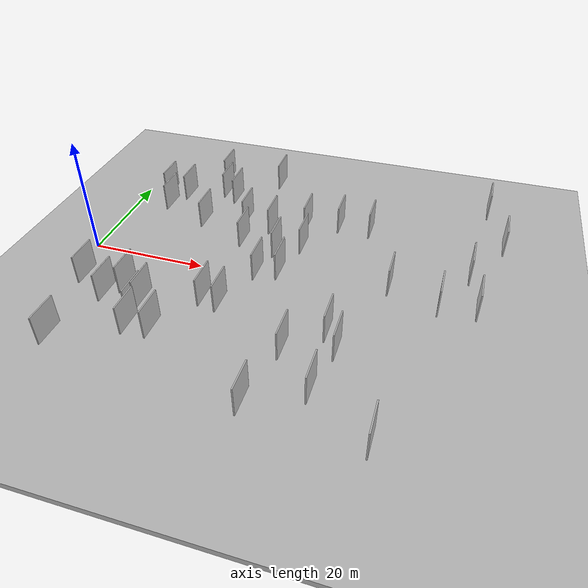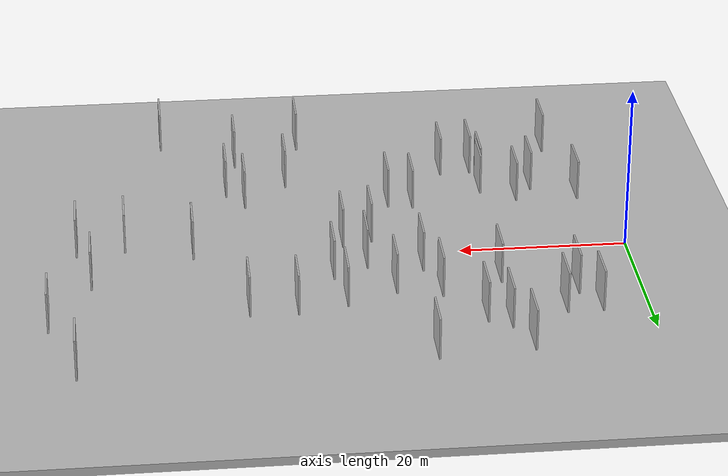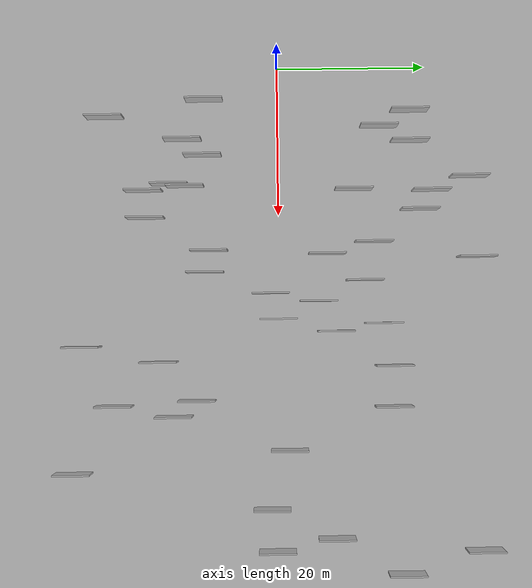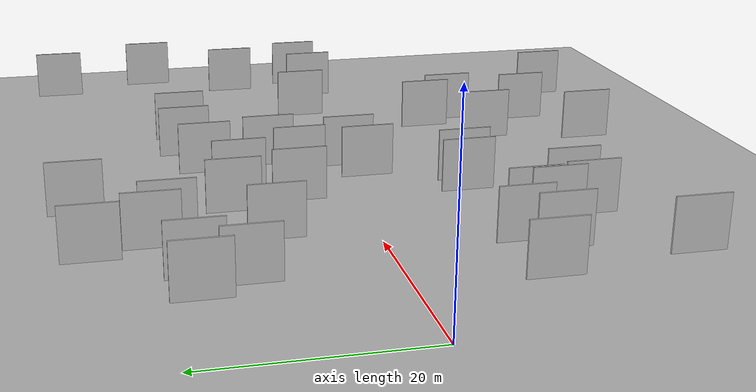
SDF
<?xml version="1.0" encoding="utf-8"?>

<sdf version="1.6">

   <world name="default">

      <gui fullscreen="0">

         <camera name="user_camera">

            <pose>-15 0 4.57585 0 0 0</pose>

            <view_controller>orbit</view_controller>

         </camera>

      </gui>

      <scene>

         <sky>

           <clouds>

             <speed>12</speed>

           </clouds>

         </sky>

         <ambient>0.4 0.4 0.4 1</ambient>

         <background>0.7 0.7 0.7 1</background>

         <shadows>1</shadows>

      </scene>

      <gravity>0 0 -9.8066</gravity>

      <magnetic_field>6e-06 2.3e-05 -4.2e-05</magnetic_field>

      <physics default="0" name="default_physics" type="ode">

         <ode>

            <solver>

               <type>quick</type>

               <iters>10</iters>

               <sor>1.0</sor>

               <use_dynamic_moi_rescaling>0</use_dynamic_moi_rescaling>

            </solver>

            <constraints>

               <cfm>0</cfm>

               <erp>0.2</erp>

               <contact_max_correcting_vel>100</contact_max_correcting_vel>

               <contact_surface_layer>0.001</contact_surface_layer>

            </constraints>

         </ode>

         <max_step_size>0.004</max_step_size>

         <real_time_factor>1</real_time_factor>

         <real_time_update_rate>250</real_time_update_rate>

      </physics>

      <light name="sun" type="directional">

         <cast_shadows>1</cast_shadows>

         <pose>0 0 10 0 0 0</pose>

         <diffuse>0.8 0.8 0.8 1</diffuse>

         <specular>0.2 0.2 0.2 1</specular>

         <attenuation>

            <range>1000</range>

            <constant>0.9</constant>

            <linear>0.01</linear>

            <quadratic>0.001</quadratic>

         </attenuation>

         <direction>-0.5 0.1 -0.9</direction>

      </light>

      <include>

         <name>ground_plane_1</name>

         <uri>model://HANNAS_ground_plane</uri>

         <pose>0 0 0  0 0 0</pose>

      </include>

      <include>

         <name>ground_plane_2</name>

         <uri>model://HANNAS_ground_plane</uri>

         <pose>100 0 0  0 0 0</pose>

      </include>

      <model name="HANNAS_wall_1">

         <static>1</static>

         <pose frame="">51.7559 1.2010 2.5 0.000000 0.000000 1.570796</pose>

         <link name="link">

            <pose frame="">0 0 2.50 0 0 0</pose>

            <collision name="collision">

               <geometry>

                  <box>

                     <size>5.00 0.2 5.00</size>

                  </box>

               </geometry>

               <max_contacts>10</max_contacts>

               <surface>

                  <contact>

                     <ode/>

                  </contact>

                  <bounce/>

                  <friction>

                     <torsional>

                        <ode/>

                     </torsional>

                     <ode/>

                  </friction>

               </surface>

            </collision>

            <visual name="visual">

               <cast_shadows>0</cast_shadows>

               <geometry>

                  <box>

                     <size>5.00 0.2 5.00</size>

                  </box>

               </geometry>

               <material>

                  <script>

                     <uri>model://HANNAS_wall/materials/scripts</uri>

                     <uri>model://HANNAS_wall/materials/textures</uri>

                     <name>vrc/HANNAS_wall</name>

                  </script>

               </material>

            </visual>

            <self_collide>0</self_collide>

            <enable_wind>0</enable_wind>

            <kinematic>0</kinematic>

         </link>

      </model>

      <model name="HANNAS_wall_2">

         <static>1</static>

         <pose frame="">37.6204 -26.5665 2.5 0.000000 0.000000 1.570796</pose>

         <link name="link">

            <pose frame="">0 0 2.50 0 0 0</pose>

            <collision name="collision">

               <geometry>

                  <box>

                     <size>5.00 0.2 5.00</size>

                  </box>

               </geometry>

               <max_contacts>10</max_contacts>

               <surface>

                  <contact>

                     <ode/>

                  </contact>

                  <bounce/>

                  <friction>

                     <torsional>

                        <ode/>

                     </torsional>

                     <ode/>

                  </friction>

               </surface>

            </collision>

            <visual name="visual">

               <cast_shadows>0</cast_shadows>

               <geometry>

                  <box>

                     <size>5.00 0.2 5.00</size>

                  </box>

               </geometry>

               <material>

                  <script>

                     <uri>model://HANNAS_wall/materials/scripts</uri>

                     <uri>model://HANNAS_wall/materials/textures</uri>

                     <name>vrc/HANNAS_wall</name>

                  </script>

               </material>

            </visual>

            <self_collide>0</self_collide>

            <enable_wind>0</enable_wind>

            <kinematic>0</kinematic>

         </link>

      </model>

      <model name="HANNAS_wall_3">

         <static>1</static>

         <pose frame="">34.1337 -0.0980 2.5 0.000000 0.000000 1.570796</pose>

         <link name="link">

            <pose frame="">0 0 2.50 0 0 0</pose>

            <collision name="collision">

               <geometry>

                  <box>

                     <size>5.00 0.2 5.00</size>

                  </box>

               </geometry>

               <max_contacts>10</max_contacts>

               <surface>

                  <contact>

                     <ode/>

                  </contact>

                  <bounce/>

                  <friction>

                     <torsional>

                        <ode/>

                     </torsional>

                     <ode/>

                  </friction>

               </surface>

            </collision>

            <visual name="visual">

               <cast_shadows>0</cast_shadows>

               <geometry>

                  <box>

                     <size>5.00 0.2 5.00</size>

                  </box>

               </geometry>

               <material>

                  <script>

                     <uri>model://HANNAS_wall/materials/scripts</uri>

                     <uri>model://HANNAS_wall/materials/textures</uri>

                     <name>vrc/HANNAS_wall</name>

                  </script>

               </material>

            </visual>

            <self_collide>0</self_collide>

            <enable_wind>0</enable_wind>

            <kinematic>0</kinematic>

         </link>

      </model>

      <model name="HANNAS_wall_4">

         <static>1</static>

         <pose frame="">19.6005 18.9630 2.5 0.000000 0.000000 1.570796</pose>

         <link name="link">

            <pose frame="">0 0 2.50 0 0 0</pose>

            <collision name="collision">

               <geometry>

                  <box>

                     <size>5.00 0.2 5.00</size>

                  </box>

               </geometry>

               <max_contacts>10</max_contacts>

               <surface>

                  <contact>

                     <ode/>

                  </contact>

                  <bounce/>

                  <friction>

                     <torsional>

                        <ode/>

                     </torsional>

                     <ode/>

                  </friction>

               </surface>

            </collision>

            <visual name="visual">

               <cast_shadows>0</cast_shadows>

               <geometry>

                  <box>

                     <size>5.00 0.2 5.00</size>

                  </box>

               </geometry>

               <material>

                  <script>

                     <uri>model://HANNAS_wall/materials/scripts</uri>

                     <uri>model://HANNAS_wall/materials/textures</uri>

                     <name>vrc/HANNAS_wall</name>

                  </script>

               </material>

            </visual>

            <self_collide>0</self_collide>

            <enable_wind>0</enable_wind>

            <kinematic>0</kinematic>

         </link>

      </model>

      <model name="HANNAS_wall_5">

         <static>1</static>

         <pose frame="">65.4501 27.2547 2.5 0.000000 0.000000 1.570796</pose>

         <link name="link">

            <pose frame="">0 0 2.50 0 0 0</pose>

            <collision name="collision">

               <geometry>

                  <box>

                     <size>5.00 0.2 5.00</size>

                  </box>

               </geometry>

               <max_contacts>10</max_contacts>

               <surface>

                  <contact>

                     <ode/>

                  </contact>

                  <bounce/>

                  <friction>

                     <torsional>

                        <ode/>

                     </torsional>

                     <ode/>

                  </friction>

               </surface>

            </collision>

            <visual name="visual">

               <cast_shadows>0</cast_shadows>

               <geometry>

                  <box>

                     <size>5.00 0.2 5.00</size>

                  </box>

               </geometry>

               <material>

                  <script>

                     <uri>model://HANNAS_wall/materials/scripts</uri>

                     <uri>model://HANNAS_wall/materials/textures</uri>

                     <name>vrc/HANNAS_wall</name>

                  </script>

               </material>

            </visual>

            <self_collide>0</self_collide>

            <enable_wind>0</enable_wind>

            <kinematic>0</kinematic>

         </link>

      </model>

      <model name="HANNAS_wall_6">

         <static>1</static>

         <pose frame="">47.0999 -14.2839 2.5 0.000000 0.000000 1.570796</pose>

         <link name="link">

            <pose frame="">0 0 2.50 0 0 0</pose>

            <collision name="collision">

               <geometry>

                  <box>

                     <size>5.00 0.2 5.00</size>

                  </box>

               </geometry>

               <max_contacts>10</max_contacts>

               <surface>

                  <contact>

                     <ode/>

                  </contact>

                  <bounce/>

                  <friction>

                     <torsional>

                        <ode/>

                     </torsional>

                     <ode/>

                  </friction>

               </surface>

            </collision>

            <visual name="visual">

               <cast_shadows>0</cast_shadows>

               <geometry>

                  <box>

                     <size>5.00 0.2 5.00</size>

                  </box>

               </geometry>

               <material>

                  <script>

                     <uri>model://HANNAS_wall/materials/scripts</uri>

                     <uri>model://HANNAS_wall/materials/textures</uri>

                     <name>vrc/HANNAS_wall</name>

                  </script>

               </material>

            </visual>

            <self_collide>0</self_collide>

            <enable_wind>0</enable_wind>

            <kinematic>0</kinematic>

         </link>

      </model>

      <model name="HANNAS_wall_7">

         <static>1</static>

         <pose frame="">35.8455 7.5653 2.5 0.000000 0.000000 1.570796</pose>

         <link name="link">

            <pose frame="">0 0 2.50 0 0 0</pose>

            <collision name="collision">

               <geometry>

                  <box>

                     <size>5.00 0.2 5.00</size>

                  </box>

               </geometry>

               <max_contacts>10</max_contacts>

               <surface>

                  <contact>

                     <ode/>

                  </contact>

                  <bounce/>

                  <friction>

                     <torsional>

                        <ode/>

                     </torsional>

                     <ode/>

                  </friction>

               </surface>

            </collision>

            <visual name="visual">

               <cast_shadows>0</cast_shadows>

               <geometry>

                  <box>

                     <size>5.00 0.2 5.00</size>

                  </box>

               </geometry>

               <material>

                  <script>

                     <uri>model://HANNAS_wall/materials/scripts</uri>

                     <uri>model://HANNAS_wall/materials/textures</uri>

                     <name>vrc/HANNAS_wall</name>

                  </script>

               </material>

            </visual>

            <self_collide>0</self_collide>

            <enable_wind>0</enable_wind>

            <kinematic>0</kinematic>

         </link>

      </model>

      <model name="HANNAS_wall_8">

         <static>1</static>

         <pose frame="">6.8248 -23.1654 2.5 0.000000 0.000000 1.570796</pose>

         <link name="link">

            <pose frame="">0 0 2.50 0 0 0</pose>

            <collision name="collision">

               <geometry>

                  <box>

                     <size>5.00 0.2 5.00</size>

                  </box>

               </geometry>

               <max_contacts>10</max_contacts>

               <surface>

                  <contact>

                     <ode/>

                  </contact>

                  <bounce/>

                  <friction>

                     <torsional>

                        <ode/>

                     </torsional>

                     <ode/>

                  </friction>

               </surface>

            </collision>

            <visual name="visual">

               <cast_shadows>0</cast_shadows>

               <geometry>

                  <box>

                     <size>5.00 0.2 5.00</size>

                  </box>

               </geometry>

               <material>

                  <script>

                     <uri>model://HANNAS_wall/materials/scripts</uri>

                     <uri>model://HANNAS_wall/materials/textures</uri>

                     <name>vrc/HANNAS_wall</name>

                  </script>

               </material>

            </visual>

            <self_collide>0</self_collide>

            <enable_wind>0</enable_wind>

            <kinematic>0</kinematic>

         </link>

      </model>

      <model name="HANNAS_wall_9">

         <static>1</static>

         <pose frame="">15.8852 -14.5647 2.5 0.000000 0.000000 1.570796</pose>

         <link name="link">

            <pose frame="">0 0 2.50 0 0 0</pose>

            <collision name="collision">

               <geometry>

                  <box>

                     <size>5.00 0.2 5.00</size>

                  </box>

               </geometry>

               <max_contacts>10</max_contacts>

               <surface>

                  <contact>

                     <ode/>

                  </contact>

                  <bounce/>

                  <friction>

                     <torsional>

                        <ode/>

                     </torsional>

                     <ode/>

                  </friction>

               </surface>

            </collision>

            <visual name="visual">

               <cast_shadows>0</cast_shadows>

               <geometry>

                  <box>

                     <size>5.00 0.2 5.00</size>

                  </box>

               </geometry>

               <material>

                  <script>

                     <uri>model://HANNAS_wall/materials/scripts</uri>

                     <uri>model://HANNAS_wall/materials/textures</uri>

                     <name>vrc/HANNAS_wall</name>

                  </script>

               </material>

            </visual>

            <self_collide>0</self_collide>

            <enable_wind>0</enable_wind>

            <kinematic>0</kinematic>

         </link>

      </model>

      <model name="HANNAS_wall_10">

         <static>1</static>

         <pose frame="">54.6330 -27.9443 2.5 0.000000 0.000000 1.570796</pose>

         <link name="link">

            <pose frame="">0 0 2.50 0 0 0</pose>

            <collision name="collision">

               <geometry>

                  <box>

                     <size>5.00 0.2 5.00</size>

                  </box>

               </geometry>

               <max_contacts>10</max_contacts>

               <surface>

                  <contact>

                     <ode/>

                  </contact>

                  <bounce/>

                  <friction>

                     <torsional>

                        <ode/>

                     </torsional>

                     <ode/>

                  </friction>

               </surface>

            </collision>

            <visual name="visual">

               <cast_shadows>0</cast_shadows>

               <geometry>

                  <box>

                     <size>5.00 0.2 5.00</size>

                  </box>

               </geometry>

               <material>

                  <script>

                     <uri>model://HANNAS_wall/materials/scripts</uri>

                     <uri>model://HANNAS_wall/materials/textures</uri>

                     <name>vrc/HANNAS_wall</name>

                  </script>

               </material>

            </visual>

            <self_collide>0</self_collide>

            <enable_wind>0</enable_wind>

            <kinematic>0</kinematic>

         </link>

      </model>

      <model name="HANNAS_wall_11">

         <static>1</static>

         <pose frame="">6.3342 17.6956 2.5 0.000000 0.000000 1.570796</pose>

         <link name="link">

            <pose frame="">0 0 2.50 0 0 0</pose>

            <collision name="collision">

               <geometry>

                  <box>

                     <size>5.00 0.2 5.00</size>

                  </box>

               </geometry>

               <max_contacts>10</max_contacts>

               <surface>

                  <contact>

                     <ode/>

                  </contact>

                  <bounce/>

                  <friction>

                     <torsional>

                        <ode/>

                     </torsional>

                     <ode/>

                  </friction>

               </surface>

            </collision>

            <visual name="visual">

               <cast_shadows>0</cast_shadows>

               <geometry>

                  <box>

                     <size>5.00 0.2 5.00</size>

                  </box>

               </geometry>

               <material>

                  <script>

                     <uri>model://HANNAS_wall/materials/scripts</uri>

                     <uri>model://HANNAS_wall/materials/textures</uri>

                     <name>vrc/HANNAS_wall</name>

                  </script>

               </material>

            </visual>

            <self_collide>0</self_collide>

            <enable_wind>0</enable_wind>

            <kinematic>0</kinematic>

         </link>

      </model>

      <model name="HANNAS_wall_12">

         <static>1</static>

         <pose frame="">12.0609 -10.0778 2.5 0.000000 0.000000 1.570796</pose>

         <link name="link">

            <pose frame="">0 0 2.50 0 0 0</pose>

            <collision name="collision">

               <geometry>

                  <box>

                     <size>5.00 0.2 5.00</size>

                  </box>

               </geometry>

               <max_contacts>10</max_contacts>

               <surface>

                  <contact>

                     <ode/>

                  </contact>

                  <bounce/>

                  <friction>

                     <torsional>

                        <ode/>

                     </torsional>

                     <ode/>

                  </friction>

               </surface>

            </collision>

            <visual name="visual">

               <cast_shadows>0</cast_shadows>

               <geometry>

                  <box>

                     <size>5.00 0.2 5.00</size>

                  </box>

               </geometry>

               <material>

                  <script>

                     <uri>model://HANNAS_wall/materials/scripts</uri>

                     <uri>model://HANNAS_wall/materials/textures</uri>

                     <name>vrc/HANNAS_wall</name>

                  </script>

               </material>

            </visual>

            <self_collide>0</self_collide>

            <enable_wind>0</enable_wind>

            <kinematic>0</kinematic>

         </link>

      </model>

      <model name="HANNAS_wall_13">

         <static>1</static>

         <pose frame="">16.7348 -18.0516 2.5 0.000000 0.000000 1.570796</pose>

         <link name="link">

            <pose frame="">0 0 2.50 0 0 0</pose>

            <collision name="collision">

               <geometry>

                  <box>

                     <size>5.00 0.2 5.00</size>

                  </box>

               </geometry>

               <max_contacts>10</max_contacts>

               <surface>

                  <contact>

                     <ode/>

                  </contact>

                  <bounce/>

                  <friction>

                     <torsional>

                        <ode/>

                     </torsional>

                     <ode/>

                  </friction>

               </surface>

            </collision>

            <visual name="visual">

               <cast_shadows>0</cast_shadows>

               <geometry>

                  <box>

                     <size>5.00 0.2 5.00</size>

                  </box>

               </geometry>

               <material>

                  <script>

                     <uri>model://HANNAS_wall/materials/scripts</uri>

                     <uri>model://HANNAS_wall/materials/textures</uri>

                     <name>vrc/HANNAS_wall</name>

                  </script>

               </material>

            </visual>

            <self_collide>0</self_collide>

            <enable_wind>0</enable_wind>

            <kinematic>0</kinematic>

         </link>

      </model>

      <model name="HANNAS_wall_14">

         <static>1</static>

         <pose frame="">15.2729 25.6316 2.5 0.000000 0.000000 1.570796</pose>

         <link name="link">

            <pose frame="">0 0 2.50 0 0 0</pose>

            <collision name="collision">

               <geometry>

                  <box>

                     <size>5.00 0.2 5.00</size>

                  </box>

               </geometry>

               <max_contacts>10</max_contacts>

               <surface>

                  <contact>

                     <ode/>

                  </contact>

                  <bounce/>

                  <friction>

                     <torsional>

                        <ode/>

                     </torsional>

                     <ode/>

                  </friction>

               </surface>

            </collision>

            <visual name="visual">

               <cast_shadows>0</cast_shadows>

               <geometry>

                  <box>

                     <size>5.00 0.2 5.00</size>

                  </box>

               </geometry>

               <material>

                  <script>

                     <uri>model://HANNAS_wall/materials/scripts</uri>

                     <uri>model://HANNAS_wall/materials/textures</uri>

                     <name>vrc/HANNAS_wall</name>

                  </script>

               </material>

            </visual>

            <self_collide>0</self_collide>

            <enable_wind>0</enable_wind>

            <kinematic>0</kinematic>

         </link>

      </model>

      <model name="HANNAS_wall_15">

         <static>1</static>

         <pose frame="">40.5353 15.3262 2.5 0.000000 0.000000 1.570796</pose>

         <link name="link">

            <pose frame="">0 0 2.50 0 0 0</pose>

            <collision name="collision">

               <geometry>

                  <box>

                     <size>5.00 0.2 5.00</size>

                  </box>

               </geometry>

               <max_contacts>10</max_contacts>

               <surface>

                  <contact>

                     <ode/>

                  </contact>

                  <bounce/>

                  <friction>

                     <torsional>

                        <ode/>

                     </torsional>

                     <ode/>

                  </friction>

               </surface>

            </collision>

            <visual name="visual">

               <cast_shadows>0</cast_shadows>

               <geometry>

                  <box>

                     <size>5.00 0.2 5.00</size>

                  </box>

               </geometry>

               <material>

                  <script>

                     <uri>model://HANNAS_wall/materials/scripts</uri>

                     <uri>model://HANNAS_wall/materials/textures</uri>

                     <name>vrc/HANNAS_wall</name>

                  </script>

               </material>

            </visual>

            <self_collide>0</self_collide>

            <enable_wind>0</enable_wind>

            <kinematic>0</kinematic>

         </link>

      </model>

      <model name="HANNAS_wall_16">

         <static>1</static>

         <pose frame="">59.6643 -1.2494 2.5 0.000000 0.000000 1.570796</pose>

         <link name="link">

            <pose frame="">0 0 2.50 0 0 0</pose>

            <collision name="collision">

               <geometry>

                  <box>

                     <size>5.00 0.2 5.00</size>

                  </box>

               </geometry>

               <max_contacts>10</max_contacts>

               <surface>

                  <contact>

                     <ode/>

                  </contact>

                  <bounce/>

                  <friction>

                     <torsional>

                        <ode/>

                     </torsional>

                     <ode/>

                  </friction>

               </surface>

            </collision>

            <visual name="visual">

               <cast_shadows>0</cast_shadows>

               <geometry>

                  <box>

                     <size>5.00 0.2 5.00</size>

                  </box>

               </geometry>

               <material>

                  <script>

                     <uri>model://HANNAS_wall/materials/scripts</uri>

                     <uri>model://HANNAS_wall/materials/textures</uri>

                     <name>vrc/HANNAS_wall</name>

                  </script>

               </material>

            </visual>

            <self_collide>0</self_collide>

            <enable_wind>0</enable_wind>

            <kinematic>0</kinematic>

         </link>

      </model>

      <model name="HANNAS_wall_17">

         <static>1</static>

         <pose frame="">4.6346 -9.8087 2.5 0.000000 0.000000 1.570796</pose>

         <link name="link">

            <pose frame="">0 0 2.50 0 0 0</pose>

            <collision name="collision">

               <geometry>

                  <box>

                     <size>5.00 0.2 5.00</size>

                  </box>

               </geometry>

               <max_contacts>10</max_contacts>

               <surface>

                  <contact>

                     <ode/>

                  </contact>

                  <bounce/>

                  <friction>

                     <torsional>

                        <ode/>

                     </torsional>

                     <ode/>

                  </friction>

               </surface>

            </collision>

            <visual name="visual">

               <cast_shadows>0</cast_shadows>

               <geometry>

                  <box>

                     <size>5.00 0.2 5.00</size>

                  </box>

               </geometry>

               <material>

                  <script>

                     <uri>model://HANNAS_wall/materials/scripts</uri>

                     <uri>model://HANNAS_wall/materials/textures</uri>

                     <name>vrc/HANNAS_wall</name>

                  </script>

               </material>

            </visual>

            <self_collide>0</self_collide>

            <enable_wind>0</enable_wind>

            <kinematic>0</kinematic>

         </link>

      </model>

      <model name="HANNAS_wall_18">

         <static>1</static>

         <pose frame="">17.0566 20.5322 2.5 0.000000 0.000000 1.570796</pose>

         <link name="link">

            <pose frame="">0 0 2.50 0 0 0</pose>

            <collision name="collision">

               <geometry>

                  <box>

                     <size>5.00 0.2 5.00</size>

                  </box>

               </geometry>

               <max_contacts>10</max_contacts>

               <surface>

                  <contact>

                     <ode/>

                  </contact>

                  <bounce/>

                  <friction>

                     <torsional>

                        <ode/>

                     </torsional>

                     <ode/>

                  </friction>

               </surface>

            </collision>

            <visual name="visual">

               <cast_shadows>0</cast_shadows>

               <geometry>

                  <box>

                     <size>5.00 0.2 5.00</size>

                  </box>

               </geometry>

               <material>

                  <script>

                     <uri>model://HANNAS_wall/materials/scripts</uri>

                     <uri>model://HANNAS_wall/materials/textures</uri>

                     <name>vrc/HANNAS_wall</name>

                  </script>

               </material>

            </visual>

            <self_collide>0</self_collide>

            <enable_wind>0</enable_wind>

            <kinematic>0</kinematic>

         </link>

      </model>

      <model name="HANNAS_wall_19">

         <static>1</static>

         <pose frame="">27.7588 -9.8810 2.5 0.000000 0.000000 1.570796</pose>

         <link name="link">

            <pose frame="">0 0 2.50 0 0 0</pose>

            <collision name="collision">

               <geometry>

                  <box>

                     <size>5.00 0.2 5.00</size>

                  </box>

               </geometry>

               <max_contacts>10</max_contacts>

               <surface>

                  <contact>

                     <ode/>

                  </contact>

                  <bounce/>

                  <friction>

                     <torsional>

                        <ode/>

                     </torsional>

                     <ode/>

                  </friction>

               </surface>

            </collision>

            <visual name="visual">

               <cast_shadows>0</cast_shadows>

               <geometry>

                  <box>

                     <size>5.00 0.2 5.00</size>

                  </box>

               </geometry>

               <material>

                  <script>

                     <uri>model://HANNAS_wall/materials/scripts</uri>

                     <uri>model://HANNAS_wall/materials/textures</uri>

                     <name>vrc/HANNAS_wall</name>

                  </script>

               </material>

            </visual>

            <self_collide>0</self_collide>

            <enable_wind>0</enable_wind>

            <kinematic>0</kinematic>

         </link>

      </model>

      <model name="HANNAS_wall_20">

         <static>1</static>

         <pose frame="">39.7409 -16.2223 2.5 0.000000 0.000000 1.570796</pose>

         <link name="link">

            <pose frame="">0 0 2.50 0 0 0</pose>

            <collision name="collision">

               <geometry>

                  <box>

                     <size>5.00 0.2 5.00</size>

                  </box>

               </geometry>

               <max_contacts>10</max_contacts>

               <surface>

                  <contact>

                     <ode/>

                  </contact>

                  <bounce/>

                  <friction>

                     <torsional>

                        <ode/>

                     </torsional>

                     <ode/>

                  </friction>

               </surface>

            </collision>

            <visual name="visual">

               <cast_shadows>0</cast_shadows>

               <geometry>

                  <box>

                     <size>5.00 0.2 5.00</size>

                  </box>

               </geometry>

               <material>

                  <script>

                     <uri>model://HANNAS_wall/materials/scripts</uri>

                     <uri>model://HANNAS_wall/materials/textures</uri>

                     <name>vrc/HANNAS_wall</name>

                  </script>

               </material>

            </visual>

            <self_collide>0</self_collide>

            <enable_wind>0</enable_wind>

            <kinematic>0</kinematic>

         </link>

      </model>

      <model name="HANNAS_wall_21">

         <static>1</static>

         <pose frame="">9.9269 -12.7434 2.5 0.000000 0.000000 1.570796</pose>

         <link name="link">

            <pose frame="">0 0 2.50 0 0 0</pose>

            <collision name="collision">

               <geometry>

                  <box>

                     <size>5.00 0.2 5.00</size>

                  </box>

               </geometry>

               <max_contacts>10</max_contacts>

               <surface>

                  <contact>

                     <ode/>

                  </contact>

                  <bounce/>

                  <friction>

                     <torsional>

                        <ode/>

                     </torsional>

                     <ode/>

                  </friction>

               </surface>

            </collision>

            <visual name="visual">

               <cast_shadows>0</cast_shadows>

               <geometry>

                  <box>

                     <size>5.00 0.2 5.00</size>

                  </box>

               </geometry>

               <material>

                  <script>

                     <uri>model://HANNAS_wall/materials/scripts</uri>

                     <uri>model://HANNAS_wall/materials/textures</uri>

                     <name>vrc/HANNAS_wall</name>

                  </script>

               </material>

            </visual>

            <self_collide>0</self_collide>

            <enable_wind>0</enable_wind>

            <kinematic>0</kinematic>

         </link>

      </model>

      <model name="HANNAS_wall_22">

         <static>1</static>

         <pose frame="">29.0348 11.4924 2.5 0.000000 0.000000 1.570796</pose>

         <link name="link">

            <pose frame="">0 0 2.50 0 0 0</pose>

            <collision name="collision">

               <geometry>

                  <box>

                     <size>5.00 0.2 5.00</size>

                  </box>

               </geometry>

               <max_contacts>10</max_contacts>

               <surface>

                  <contact>

                     <ode/>

                  </contact>

                  <bounce/>

                  <friction>

                     <torsional>

                        <ode/>

                     </torsional>

                     <ode/>

                  </friction>

               </surface>

            </collision>

            <visual name="visual">

               <cast_shadows>0</cast_shadows>

               <geometry>

                  <box>

                     <size>5.00 0.2 5.00</size>

                  </box>

               </geometry>

               <material>

                  <script>

                     <uri>model://HANNAS_wall/materials/scripts</uri>

                     <uri>model://HANNAS_wall/materials/textures</uri>

                     <name>vrc/HANNAS_wall</name>

                  </script>

               </material>

            </visual>

            <self_collide>0</self_collide>

            <enable_wind>0</enable_wind>

            <kinematic>0</kinematic>

         </link>

      </model>

      <model name="HANNAS_wall_23">

         <static>1</static>

         <pose frame="">31.7798 5.2573 2.5 0.000000 0.000000 1.570796</pose>

         <link name="link">

            <pose frame="">0 0 2.50 0 0 0</pose>

            <collision name="collision">

               <geometry>

                  <box>

                     <size>5.00 0.2 5.00</size>

                  </box>

               </geometry>

               <max_contacts>10</max_contacts>

               <surface>

                  <contact>

                     <ode/>

                  </contact>

                  <bounce/>

                  <friction>

                     <torsional>

                        <ode/>

                     </torsional>

                     <ode/>

                  </friction>

               </surface>

            </collision>

            <visual name="visual">

               <cast_shadows>0</cast_shadows>

               <geometry>

                  <box>

                     <size>5.00 0.2 5.00</size>

                  </box>

               </geometry>

               <material>

                  <script>

                     <uri>model://HANNAS_wall/materials/scripts</uri>

                     <uri>model://HANNAS_wall/materials/textures</uri>

                     <name>vrc/HANNAS_wall</name>

                  </script>

               </material>

            </visual>

            <self_collide>0</self_collide>

            <enable_wind>0</enable_wind>

            <kinematic>0</kinematic>

         </link>

      </model>

      <model name="HANNAS_wall_24">

         <static>1</static>

         <pose frame="">23.8998 12.7518 2.5 0.000000 0.000000 1.570796</pose>

         <link name="link">

            <pose frame="">0 0 2.50 0 0 0</pose>

            <collision name="collision">

               <geometry>

                  <box>

                     <size>5.00 0.2 5.00</size>

                  </box>

               </geometry>

               <max_contacts>10</max_contacts>

               <surface>

                  <contact>

                     <ode/>

                  </contact>

                  <bounce/>

                  <friction>

                     <torsional>

                        <ode/>

                     </torsional>

                     <ode/>

                  </friction>

               </surface>

            </collision>

            <visual name="visual">

               <cast_shadows>0</cast_shadows>

               <geometry>

                  <box>

                     <size>5.00 0.2 5.00</size>

                  </box>

               </geometry>

               <material>

                  <script>

                     <uri>model://HANNAS_wall/materials/scripts</uri>

                     <uri>model://HANNAS_wall/materials/textures</uri>

                     <name>vrc/HANNAS_wall</name>

                  </script>

               </material>

            </visual>

            <self_collide>0</self_collide>

            <enable_wind>0</enable_wind>

            <kinematic>0</kinematic>

         </link>

      </model>

      <model name="HANNAS_wall_25">

         <static>1</static>

         <pose frame="">26.0692 26.5243 2.5 0.000000 0.000000 1.570796</pose>

         <link name="link">

            <pose frame="">0 0 2.50 0 0 0</pose>

            <collision name="collision">

               <geometry>

                  <box>

                     <size>5.00 0.2 5.00</size>

                  </box>

               </geometry>

               <max_contacts>10</max_contacts>

               <surface>

                  <contact>

                     <ode/>

                  </contact>

                  <bounce/>

                  <friction>

                     <torsional>

                        <ode/>

                     </torsional>

                     <ode/>

                  </friction>

               </surface>

            </collision>

            <visual name="visual">

               <cast_shadows>0</cast_shadows>

               <geometry>

                  <box>

                     <size>5.00 0.2 5.00</size>

                  </box>

               </geometry>

               <material>

                  <script>

                     <uri>model://HANNAS_wall/materials/scripts</uri>

                     <uri>model://HANNAS_wall/materials/textures</uri>

                     <name>vrc/HANNAS_wall</name>

                  </script>

               </material>

            </visual>

            <self_collide>0</self_collide>

            <enable_wind>0</enable_wind>

            <kinematic>0</kinematic>

         </link>

      </model>

      <model name="HANNAS_wall_26">

         <static>1</static>

         <pose frame="">30.6653 -1.1429 2.5 0.000000 0.000000 1.570796</pose>

         <link name="link">

            <pose frame="">0 0 2.50 0 0 0</pose>

            <collision name="collision">

               <geometry>

                  <box>

                     <size>5.00 0.2 5.00</size>

                  </box>

               </geometry>

               <max_contacts>10</max_contacts>

               <surface>

                  <contact>

                     <ode/>

                  </contact>

                  <bounce/>

                  <friction>

                     <torsional>

                        <ode/>

                     </torsional>

                     <ode/>

                  </friction>

               </surface>

            </collision>

            <visual name="visual">

               <cast_shadows>0</cast_shadows>

               <geometry>

                  <box>

                     <size>5.00 0.2 5.00</size>

                  </box>

               </geometry>

               <material>

                  <script>

                     <uri>model://HANNAS_wall/materials/scripts</uri>

                     <uri>model://HANNAS_wall/materials/textures</uri>

                     <name>vrc/HANNAS_wall</name>

                  </script>

               </material>

            </visual>

            <self_collide>0</self_collide>

            <enable_wind>0</enable_wind>

            <kinematic>0</kinematic>

         </link>

      </model>

      <model name="HANNAS_wall_27">

         <static>1</static>

         <pose frame="">46.0187 15.2116 2.5 0.000000 0.000000 1.570796</pose>

         <link name="link">

            <pose frame="">0 0 2.50 0 0 0</pose>

            <collision name="collision">

               <geometry>

                  <box>

                     <size>5.00 0.2 5.00</size>

                  </box>

               </geometry>

               <max_contacts>10</max_contacts>

               <surface>

                  <contact>

                     <ode/>

                  </contact>

                  <bounce/>

                  <friction>

                     <torsional>

                        <ode/>

                     </torsional>

                     <ode/>

                  </friction>

               </surface>

            </collision>

            <visual name="visual">

               <cast_shadows>0</cast_shadows>

               <geometry>

                  <box>

                     <size>5.00 0.2 5.00</size>

                  </box>

               </geometry>

               <material>

                  <script>

                     <uri>model://HANNAS_wall/materials/scripts</uri>

                     <uri>model://HANNAS_wall/materials/textures</uri>

                     <name>vrc/HANNAS_wall</name>

                  </script>

               </material>

            </visual>

            <self_collide>0</self_collide>

            <enable_wind>0</enable_wind>

            <kinematic>0</kinematic>

         </link>

      </model>

      <model name="HANNAS_wall_28">

         <static>1</static>

         <pose frame="">20.3967 -17.7878 2.5 0.000000 0.000000 1.570796</pose>

         <link name="link">

            <pose frame="">0 0 2.50 0 0 0</pose>

            <collision name="collision">

               <geometry>

                  <box>

                     <size>5.00 0.2 5.00</size>

                  </box>

               </geometry>

               <max_contacts>10</max_contacts>

               <surface>

                  <contact>

                     <ode/>

                  </contact>

                  <bounce/>

                  <friction>

                     <torsional>

                        <ode/>

                     </torsional>

                     <ode/>

                  </friction>

               </surface>

            </collision>

            <visual name="visual">

               <cast_shadows>0</cast_shadows>

               <geometry>

                  <box>

                     <size>5.00 0.2 5.00</size>

                  </box>

               </geometry>

               <material>

                  <script>

                     <uri>model://HANNAS_wall/materials/scripts</uri>

                     <uri>model://HANNAS_wall/materials/textures</uri>

                     <name>vrc/HANNAS_wall</name>

                  </script>

               </material>

            </visual>

            <self_collide>0</self_collide>

            <enable_wind>0</enable_wind>

            <kinematic>0</kinematic>

         </link>

      </model>

      <model name="HANNAS_wall_29">

         <static>1</static>

         <pose frame="">68.5288 16.7772 2.5 0.000000 0.000000 1.570796</pose>

         <link name="link">

            <pose frame="">0 0 2.50 0 0 0</pose>

            <collision name="collision">

               <geometry>

                  <box>

                     <size>5.00 0.2 5.00</size>

                  </box>

               </geometry>

               <max_contacts>10</max_contacts>

               <surface>

                  <contact>

                     <ode/>

                  </contact>

                  <bounce/>

                  <friction>

                     <torsional>

                        <ode/>

                     </torsional>

                     <ode/>

                  </friction>

               </surface>

            </collision>

            <visual name="visual">

               <cast_shadows>0</cast_shadows>

               <geometry>

                  <box>

                     <size>5.00 0.2 5.00</size>

                  </box>

               </geometry>

               <material>

                  <script>

                     <uri>model://HANNAS_wall/materials/scripts</uri>

                     <uri>model://HANNAS_wall/materials/textures</uri>

                     <name>vrc/HANNAS_wall</name>

                  </script>

               </material>

            </visual>

            <self_collide>0</self_collide>

            <enable_wind>0</enable_wind>

            <kinematic>0</kinematic>

         </link>

      </model>

      <model name="HANNAS_wall_30">

         <static>1</static>

         <pose frame="">24.8471 -9.3508 2.5 0.000000 0.000000 1.570796</pose>

         <link name="link">

            <pose frame="">0 0 2.50 0 0 0</pose>

            <collision name="collision">

               <geometry>

                  <box>

                     <size>5.00 0.2 5.00</size>

                  </box>

               </geometry>

               <max_contacts>10</max_contacts>

               <surface>

                  <contact>

                     <ode/>

                  </contact>

                  <bounce/>

                  <friction>

                     <torsional>

                        <ode/>

                     </torsional>

                     <ode/>

                  </friction>

               </surface>

            </collision>

            <visual name="visual">

               <cast_shadows>0</cast_shadows>

               <geometry>

                  <box>

                     <size>5.00 0.2 5.00</size>

                  </box>

               </geometry>

               <material>

                  <script>

                     <uri>model://HANNAS_wall/materials/scripts</uri>

                     <uri>model://HANNAS_wall/materials/textures</uri>

                     <name>vrc/HANNAS_wall</name>

                  </script>

               </material>

            </visual>

            <self_collide>0</self_collide>

            <enable_wind>0</enable_wind>

            <kinematic>0</kinematic>

         </link>

      </model>

      <model name="HANNAS_wall_31">

         <static>1</static>

         <pose frame="">16.8258 10.1341 2.5 0.000000 0.000000 1.570796</pose>

         <link name="link">

            <pose frame="">0 0 2.50 0 0 0</pose>

            <collision name="collision">

               <geometry>

                  <box>

                     <size>5.00 0.2 5.00</size>

                  </box>

               </geometry>

               <max_contacts>10</max_contacts>

               <surface>

                  <contact>

                     <ode/>

                  </contact>

                  <bounce/>

                  <friction>

                     <torsional>

                        <ode/>

                     </torsional>

                     <ode/>

                  </friction>

               </surface>

            </collision>

            <visual name="visual">

               <cast_shadows>0</cast_shadows>

               <geometry>

                  <box>

                     <size>5.00 0.2 5.00</size>

                  </box>

               </geometry>

               <material>

                  <script>

                     <uri>model://HANNAS_wall/materials/scripts</uri>

                     <uri>model://HANNAS_wall/materials/textures</uri>

                     <name>vrc/HANNAS_wall</name>

                  </script>

               </material>

            </visual>

            <self_collide>0</self_collide>

            <enable_wind>0</enable_wind>

            <kinematic>0</kinematic>

         </link>

      </model>

      <model name="HANNAS_wall_32">

         <static>1</static>

         <pose frame="">16.1717 -12.4716 2.5 0.000000 0.000000 1.570796</pose>

         <link name="link">

            <pose frame="">0 0 2.50 0 0 0</pose>

            <collision name="collision">

               <geometry>

                  <box>

                     <size>5.00 0.2 5.00</size>

                  </box>

               </geometry>

               <max_contacts>10</max_contacts>

               <surface>

                  <contact>

                     <ode/>

                  </contact>

                  <bounce/>

                  <friction>

                     <torsional>

                        <ode/>

                     </torsional>

                     <ode/>

                  </friction>

               </surface>

            </collision>

            <visual name="visual">

               <cast_shadows>0</cast_shadows>

               <geometry>

                  <box>

                     <size>5.00 0.2 5.00</size>

                  </box>

               </geometry>

               <material>

                  <script>

                     <uri>model://HANNAS_wall/materials/scripts</uri>

                     <uri>model://HANNAS_wall/materials/textures</uri>

                     <name>vrc/HANNAS_wall</name>

                  </script>

               </material>

            </visual>

            <self_collide>0</self_collide>

            <enable_wind>0</enable_wind>

            <kinematic>0</kinematic>

         </link>

      </model>

      <model name="HANNAS_wall_33">

         <static>1</static>

         <pose frame="">45.6083 -22.2890 2.5 0.000000 0.000000 1.570796</pose>

         <link name="link">

            <pose frame="">0 0 2.50 0 0 0</pose>

            <collision name="collision">

               <geometry>

                  <box>

                     <size>5.00 0.2 5.00</size>

                  </box>

               </geometry>

               <max_contacts>10</max_contacts>

               <surface>

                  <contact>

                     <ode/>

                  </contact>

                  <bounce/>

                  <friction>

                     <torsional>

                        <ode/>

                     </torsional>

                     <ode/>

                  </friction>

               </surface>

            </collision>

            <visual name="visual">

               <cast_shadows>0</cast_shadows>

               <geometry>

                  <box>

                     <size>5.00 0.2 5.00</size>

                  </box>

               </geometry>

               <material>

                  <script>

                     <uri>model://HANNAS_wall/materials/scripts</uri>

                     <uri>model://HANNAS_wall/materials/textures</uri>

                     <name>vrc/HANNAS_wall</name>

                  </script>

               </material>

            </visual>

            <self_collide>0</self_collide>

            <enable_wind>0</enable_wind>

            <kinematic>0</kinematic>

         </link>

      </model>

      <model name="HANNAS_wall_34">

         <static>1</static>

         <pose frame="">8.4058 13.5916 2.5 0.000000 0.000000 1.570796</pose>

         <link name="link">

            <pose frame="">0 0 2.50 0 0 0</pose>

            <collision name="collision">

               <geometry>

                  <box>

                     <size>5.00 0.2 5.00</size>

                  </box>

               </geometry>

               <max_contacts>10</max_contacts>

               <surface>

                  <contact>

                     <ode/>

                  </contact>

                  <bounce/>

                  <friction>

                     <torsional>

                        <ode/>

                     </torsional>

                     <ode/>

                  </friction>

               </surface>

            </collision>

            <visual name="visual">

               <cast_shadows>0</cast_shadows>

               <geometry>

                  <box>

                     <size>5.00 0.2 5.00</size>

                  </box>

               </geometry>

               <material>

                  <script>

                     <uri>model://HANNAS_wall/materials/scripts</uri>

                     <uri>model://HANNAS_wall/materials/textures</uri>

                     <name>vrc/HANNAS_wall</name>

                  </script>

               </material>

            </visual>

            <self_collide>0</self_collide>

            <enable_wind>0</enable_wind>

            <kinematic>0</kinematic>

         </link>

      </model>

      <model name="HANNAS_wall_35">

         <static>1</static>

         <pose frame="">25.4410 6.5100 2.5 0.000000 0.000000 1.570796</pose>

         <link name="link">

            <pose frame="">0 0 2.50 0 0 0</pose>

            <collision name="collision">

               <geometry>

                  <box>

                     <size>5.00 0.2 5.00</size>

                  </box>

               </geometry>

               <max_contacts>10</max_contacts>

               <surface>

                  <contact>

                     <ode/>

                  </contact>

                  <bounce/>

                  <friction>

                     <torsional>

                        <ode/>

                     </torsional>

                     <ode/>

                  </friction>

               </surface>

            </collision>

            <visual name="visual">

               <cast_shadows>0</cast_shadows>

               <geometry>

                  <box>

                     <size>5.00 0.2 5.00</size>

                  </box>

               </geometry>

               <material>

                  <script>

                     <uri>model://HANNAS_wall/materials/scripts</uri>

                     <uri>model://HANNAS_wall/materials/textures</uri>

                     <name>vrc/HANNAS_wall</name>

                  </script>

               </material>

            </visual>

            <self_collide>0</self_collide>

            <enable_wind>0</enable_wind>

            <kinematic>0</kinematic>

         </link>

      </model>

      <model name="HANNAS_wall_36">

         <static>1</static>

         <pose frame="">34.8372 13.9671 2.5 0.000000 0.000000 1.570796</pose>

         <link name="link">

            <pose frame="">0 0 2.50 0 0 0</pose>

            <collision name="collision">

               <geometry>

                  <box>

                     <size>5.00 0.2 5.00</size>

                  </box>

               </geometry>

               <max_contacts>10</max_contacts>

               <surface>

                  <contact>

                     <ode/>

                  </contact>

                  <bounce/>

                  <friction>

                     <torsional>

                        <ode/>

                     </torsional>

                     <ode/>

                  </friction>

               </surface>

            </collision>

            <visual name="visual">

               <cast_shadows>0</cast_shadows>

               <geometry>

                  <box>

                     <size>5.00 0.2 5.00</size>

                  </box>

               </geometry>

               <material>

                  <script>

                     <uri>model://HANNAS_wall/materials/scripts</uri>

                     <uri>model://HANNAS_wall/materials/textures</uri>

                     <name>vrc/HANNAS_wall</name>

                  </script>

               </material>

            </visual>

            <self_collide>0</self_collide>

            <enable_wind>0</enable_wind>

            <kinematic>0</kinematic>

         </link>

      </model>

      <model name="HANNAS_wall_37">

         <static>1</static>

         <pose frame="">44.9894 -11.1688 2.5 0.000000 0.000000 1.570796</pose>

         <link name="link">

            <pose frame="">0 0 2.50 0 0 0</pose>

            <collision name="collision">

               <geometry>

                  <box>

                     <size>5.00 0.2 5.00</size>

                  </box>

               </geometry>

               <max_contacts>10</max_contacts>

               <surface>

                  <contact>

                     <ode/>

                  </contact>

                  <bounce/>

                  <friction>

                     <torsional>

                        <ode/>

                     </torsional>

                     <ode/>

                  </friction>

               </surface>

            </collision>

            <visual name="visual">

               <cast_shadows>0</cast_shadows>

               <geometry>

                  <box>

                     <size>5.00 0.2 5.00</size>

                  </box>

               </geometry>

               <material>

                  <script>

                     <uri>model://HANNAS_wall/materials/scripts</uri>

                     <uri>model://HANNAS_wall/materials/textures</uri>

                     <name>vrc/HANNAS_wall</name>

                  </script>

               </material>

            </visual>

            <self_collide>0</self_collide>

            <enable_wind>0</enable_wind>

            <kinematic>0</kinematic>

         </link>

      </model>

      <model name="HANNAS_wall_38">

         <static>1</static>

         <pose frame="">65.3092 -0.5681 2.5 0.000000 0.000000 1.570796</pose>

         <link name="link">

            <pose frame="">0 0 2.50 0 0 0</pose>

            <collision name="collision">

               <geometry>

                  <box>

                     <size>5.00 0.2 5.00</size>

                  </box>

               </geometry>

               <max_contacts>10</max_contacts>

               <surface>

                  <contact>

                     <ode/>

                  </contact>

                  <bounce/>

                  <friction>

                     <torsional>

                        <ode/>

                     </torsional>

                     <ode/>

                  </friction>

               </surface>

            </collision>

            <visual name="visual">

               <cast_shadows>0</cast_shadows>

               <geometry>

                  <box>

                     <size>5.00 0.2 5.00</size>

                  </box>

               </geometry>

               <material>

                  <script>

                     <uri>model://HANNAS_wall/materials/scripts</uri>

                     <uri>model://HANNAS_wall/materials/textures</uri>

                     <name>vrc/HANNAS_wall</name>

                  </script>

               </material>

            </visual>

            <self_collide>0</self_collide>

            <enable_wind>0</enable_wind>

            <kinematic>0</kinematic>

         </link>

      </model>

      <model name="HANNAS_wall_39">

         <static>1</static>

         <pose frame="">10.4147 17.7193 2.5 0.000000 0.000000 1.570796</pose>

         <link name="link">

            <pose frame="">0 0 2.50 0 0 0</pose>

            <collision name="collision">

               <geometry>

                  <box>

                     <size>5.00 0.2 5.00</size>

                  </box>

               </geometry>

               <max_contacts>10</max_contacts>

               <surface>

                  <contact>

                     <ode/>

                  </contact>

                  <bounce/>

                  <friction>

                     <torsional>

                        <ode/>

                     </torsional>

                     <ode/>

                  </friction>

               </surface>

            </collision>

            <visual name="visual">

               <cast_shadows>0</cast_shadows>

               <geometry>

                  <box>

                     <size>5.00 0.2 5.00</size>

                  </box>

               </geometry>

               <material>

                  <script>

                     <uri>model://HANNAS_wall/materials/scripts</uri>

                     <uri>model://HANNAS_wall/materials/textures</uri>

                     <name>vrc/HANNAS_wall</name>

                  </script>

               </material>

            </visual>

            <self_collide>0</self_collide>

            <enable_wind>0</enable_wind>

            <kinematic>0</kinematic>

         </link>

      </model>

      <model name="HANNAS_wall_40">

         <static>1</static>

         <pose frame="">63.6526 7.4116 2.5 0.000000 0.000000 1.570796</pose>

         <link name="link">

            <pose frame="">0 0 2.50 0 0 0</pose>

            <collision name="collision">

               <geometry>

                  <box>

                     <size>5.00 0.2 5.00</size>

                  </box>

               </geometry>

               <max_contacts>10</max_contacts>

               <surface>

                  <contact>

                     <ode/>

                  </contact>

                  <bounce/>

                  <friction>

                     <torsional>

                        <ode/>

                     </torsional>

                     <ode/>

                  </friction>

               </surface>

            </collision>

            <visual name="visual">

               <cast_shadows>0</cast_shadows>

               <geometry>

                  <box>

                     <size>5.00 0.2 5.00</size>

                  </box>

               </geometry>

               <material>

                  <script>

                     <uri>model://HANNAS_wall/materials/scripts</uri>

                     <uri>model://HANNAS_wall/materials/textures</uri>

                     <name>vrc/HANNAS_wall</name>

                  </script>

               </material>

            </visual>

            <self_collide>0</self_collide>

            <enable_wind>0</enable_wind>

            <kinematic>0</kinematic>

         </link>

      </model>

   </world>

</sdf>
